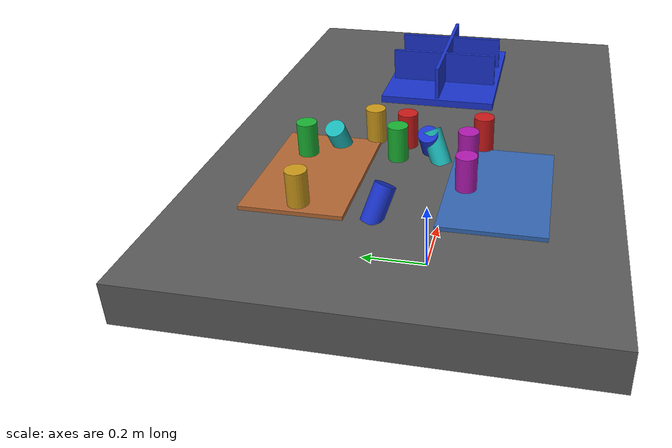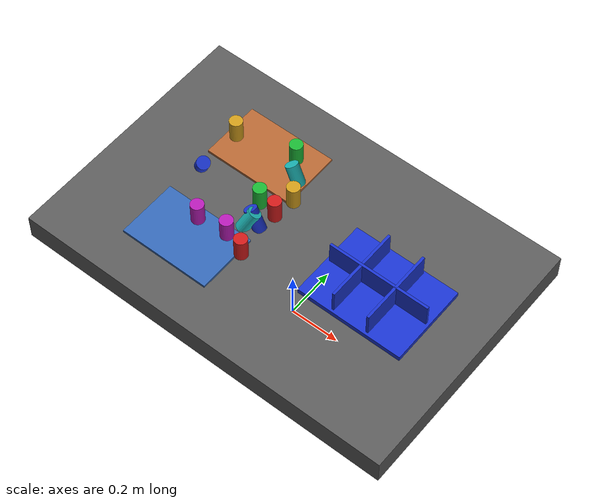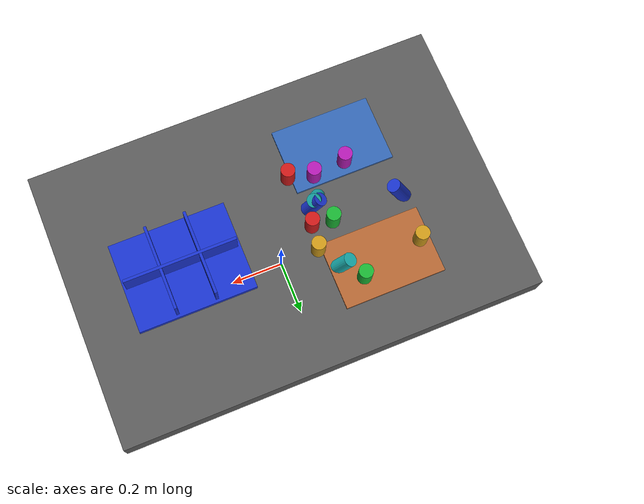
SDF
<?xml version="1.0" ?>
<sdf version="1.9">
  <!-- Standalone M1B scene.  The controller-backed Panda is spawned by the
       existing launch path; this file never alters the frozen M1A cube world. -->
  <world name="industrial_cylinder_v1">
    <physics name="bullet" type="bullet"><max_step_size>0.001</max_step_size><real_time_factor>1.0</real_time_factor></physics>
    <plugin name="gz::sim::systems::Physics" filename="gz-sim-physics-system"><engine><filename>gz-physics-bullet-featherstone-plugin</filename></engine></plugin>
    <plugin name="gz::sim::systems::UserCommands" filename="gz-sim-user-commands-system"/>
    <plugin name="gz::sim::systems::SceneBroadcaster" filename="gz-sim-scene-broadcaster-system"/>
    <plugin name="gz::sim::systems::Sensors" filename="gz-sim-sensors-system"><render_engine>ogre2</render_engine></plugin>
    <gravity>0 0 -9.81</gravity>
    <light type="directional" name="industrial_light"><pose>0 0 5 0 0 0</pose><direction>-0.3 0.2 -0.9</direction><diffuse>0.9 0.9 0.9 1</diffuse></light>
    <model name="industrial_work_table"><static>true</static><link name="link"><pose>0 0 0.4 0 0 0</pose><collision name="collision"><geometry><box><size>1.5 1.0 0.1</size></box></geometry></collision><visual name="visual"><geometry><box><size>1.5 1.0 0.1</size></box></geometry><material><diffuse>0.35 0.35 0.35 1</diffuse></material></visual></link></model>
    <model name="camera_fixture"><static>true</static><link name="camera_rgbd"><pose>-0.80 -0.80 1.40 0 0.77 0.93</pose><sensor name="front_rgbd" type="rgbd_camera"><always_on>1</always_on><update_rate>15</update_rate><topic>/xh/camera/rgbd</topic><camera><horizontal_fov>1.047</horizontal_fov><image><width>640</width><height>480</height><format>R8G8B8</format></image><clip><near>0.1</near><far>4.0</far></clip></camera></sensor></link></model>
    <model name="incoming_zone_a"><static>true</static><link name="link"><pose>-0.28 -0.22 0.455 0 0 0</pose><visual name="visual"><geometry><box><size>0.36 0.24 0.01</size></box></geometry><material><diffuse>0.2 0.4 0.7 1</diffuse></material></visual></link></model>
    <model name="incoming_zone_b"><static>true</static><link name="link"><pose>-0.28 0.22 0.455 0 0 0</pose><visual name="visual"><geometry><box><size>0.36 0.24 0.01</size></box></geometry><material><diffuse>0.7 0.4 0.2 1</diffuse></material></visual></link></model>
    <!-- M1B_RANDOM_PARTS_BEGIN -->
    <model name="cylinder_01"><pose>-0.1013 0.0290 0.5000 0.0000 0.0000 -1.5517</pose><link name="link"><inertial><mass>0.06</mass></inertial><collision name="collision"><geometry><cylinder><radius>0.025</radius><length>0.09</length></cylinder></geometry></collision><visual name="visual"><geometry><cylinder><radius>0.025</radius><length>0.09</length></cylinder></geometry><material><diffuse>0.800 0.100 0.100 1</diffuse><specular>0.15 0.15 0.15 1</specular></material></visual></link></model>
    <model name="cylinder_02"><pose>-0.1965 0.2620 0.5000 3.1416 0.0000 -1.6891</pose><link name="link"><inertial><mass>0.06</mass></inertial><collision name="collision"><geometry><cylinder><radius>0.025</radius><length>0.09</length></cylinder></geometry></collision><visual name="visual"><geometry><cylinder><radius>0.025</radius><length>0.09</length></cylinder></geometry><material><diffuse>0.100 0.700 0.200 1</diffuse><specular>0.15 0.15 0.15 1</specular></material></visual></link></model>
    <model name="cylinder_03"><pose>-0.4246 0.0288 0.4800 0.4500 -0.3000 1.5094</pose><link name="link"><inertial><mass>0.06</mass></inertial><collision name="collision"><geometry><cylinder><radius>0.025</radius><length>0.09</length></cylinder></geometry></collision><visual name="visual"><geometry><cylinder><radius>0.025</radius><length>0.09</length></cylinder></geometry><material><diffuse>0.100 0.200 0.800 1</diffuse><specular>0.15 0.15 0.15 1</specular></material></visual></link></model>
    <model name="cylinder_04"><pose>-0.4237 0.2110 0.5000 0.0000 0.0000 -2.0005</pose><link name="link"><inertial><mass>0.06</mass></inertial><collision name="collision"><geometry><cylinder><radius>0.025</radius><length>0.09</length></cylinder></geometry></collision><visual name="visual"><geometry><cylinder><radius>0.025</radius><length>0.09</length></cylinder></geometry><material><diffuse>0.800 0.600 0.100 1</diffuse><specular>0.15 0.15 0.15 1</specular></material></visual></link></model>
    <model name="cylinder_05"><pose>-0.1755 -0.1344 0.5000 3.1416 0.0000 0.3887</pose><link name="link"><inertial><mass>0.06</mass></inertial><collision name="collision"><geometry><cylinder><radius>0.025</radius><length>0.09</length></cylinder></geometry></collision><visual name="visual"><geometry><cylinder><radius>0.025</radius><length>0.09</length></cylinder></geometry><material><diffuse>0.700 0.100 0.700 1</diffuse><specular>0.15 0.15 0.15 1</specular></material></visual></link></model>
    <model name="cylinder_06"><pose>-0.1448 0.1960 0.4800 0.4500 -0.3000 -1.2314</pose><link name="link"><inertial><mass>0.06</mass></inertial><collision name="collision"><geometry><cylinder><radius>0.025</radius><length>0.09</length></cylinder></geometry></collision><visual name="visual"><geometry><cylinder><radius>0.025</radius><length>0.09</length></cylinder></geometry><material><diffuse>0.100 0.700 0.700 1</diffuse><specular>0.15 0.15 0.15 1</specular></material></visual></link></model>
    <model name="cylinder_07"><pose>-0.0898 -0.1622 0.5000 0.0000 0.0000 3.0290</pose><link name="link"><inertial><mass>0.06</mass></inertial><collision name="collision"><geometry><cylinder><radius>0.025</radius><length>0.09</length></cylinder></geometry></collision><visual name="visual"><geometry><cylinder><radius>0.025</radius><length>0.09</length></cylinder></geometry><material><diffuse>0.800 0.100 0.100 1</diffuse><specular>0.15 0.15 0.15 1</specular></material></visual></link></model>
    <model name="cylinder_08"><pose>-0.1745 0.0390 0.5000 3.1416 0.0000 1.5590</pose><link name="link"><inertial><mass>0.06</mass></inertial><collision name="collision"><geometry><cylinder><radius>0.025</radius><length>0.09</length></cylinder></geometry></collision><visual name="visual"><geometry><cylinder><radius>0.025</radius><length>0.09</length></cylinder></geometry><material><diffuse>0.100 0.700 0.200 1</diffuse><specular>0.15 0.15 0.15 1</specular></material></visual></link></model>
    <model name="cylinder_09"><pose>-0.1340 -0.0347 0.4800 0.4500 -0.3000 -1.1323</pose><link name="link"><inertial><mass>0.06</mass></inertial><collision name="collision"><geometry><cylinder><radius>0.025</radius><length>0.09</length></cylinder></geometry></collision><visual name="visual"><geometry><cylinder><radius>0.025</radius><length>0.09</length></cylinder></geometry><material><diffuse>0.100 0.200 0.800 1</diffuse><specular>0.15 0.15 0.15 1</specular></material></visual></link></model>
    <model name="cylinder_10"><pose>-0.0892 0.1145 0.5000 0.0000 0.0000 -3.0614</pose><link name="link"><inertial><mass>0.06</mass></inertial><collision name="collision"><geometry><cylinder><radius>0.025</radius><length>0.09</length></cylinder></geometry></collision><visual name="visual"><geometry><cylinder><radius>0.025</radius><length>0.09</length></cylinder></geometry><material><diffuse>0.800 0.600 0.100 1</diffuse><specular>0.15 0.15 0.15 1</specular></material></visual></link></model>
    <model name="cylinder_11"><pose>-0.2943 -0.1454 0.5000 3.1416 0.0000 -0.5380</pose><link name="link"><inertial><mass>0.06</mass></inertial><collision name="collision"><geometry><cylinder><radius>0.025</radius><length>0.09</length></cylinder></geometry></collision><visual name="visual"><geometry><cylinder><radius>0.025</radius><length>0.09</length></cylinder></geometry><material><diffuse>0.700 0.100 0.700 1</diffuse><specular>0.15 0.15 0.15 1</specular></material></visual></link></model>
    <model name="cylinder_12"><pose>-0.1494 -0.0526 0.4800 0.4500 -0.3000 2.9415</pose><link name="link"><inertial><mass>0.06</mass></inertial><collision name="collision"><geometry><cylinder><radius>0.025</radius><length>0.09</length></cylinder></geometry></collision><visual name="visual"><geometry><cylinder><radius>0.025</radius><length>0.09</length></cylinder></geometry><material><diffuse>0.100 0.700 0.700 1</diffuse><specular>0.15 0.15 0.15 1</specular></material></visual></link></model>
    <!-- M1B_RANDOM_PARTS_END -->
    <model name="blue_partition_bin"><static>true</static><pose>0.36 0 0.45 0 0 0</pose><link name="link"><collision name="floor"><pose>0 0 0.01 0 0 0</pose><geometry><box><size>0.42 0.32 0.02</size></box></geometry></collision><visual name="floor_visual"><pose>0 0 0.01 0 0 0</pose><geometry><box><size>0.42 0.32 0.02</size></box></geometry><material><diffuse>0.1 0.2 0.8 1</diffuse></material></visual><visual name="row_divider"><pose>0 0 0.06 0 0 0</pose><geometry><box><size>0.40 0.01 0.10</size></box></geometry><material><diffuse>0.1 0.2 0.8 1</diffuse></material></visual><visual name="col_divider_a"><pose>-0.07 0 0.06 0 0 0</pose><geometry><box><size>0.01 0.30 0.10</size></box></geometry><material><diffuse>0.1 0.2 0.8 1</diffuse></material></visual><visual name="col_divider_b"><pose>0.07 0 0.06 0 0 0</pose><geometry><box><size>0.01 0.30 0.10</size></box></geometry><material><diffuse>0.1 0.2 0.8 1</diffuse></material></visual></link></model>
    <!-- Reserved only: second table, bin transport corridor, stackable-bin
         collision volume, and second arm mounting namespace. -->
  </world>
</sdf>
